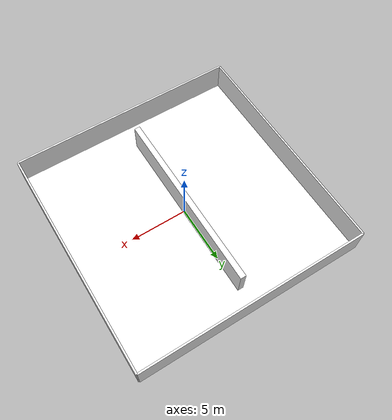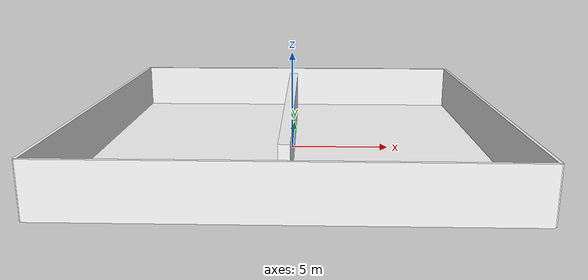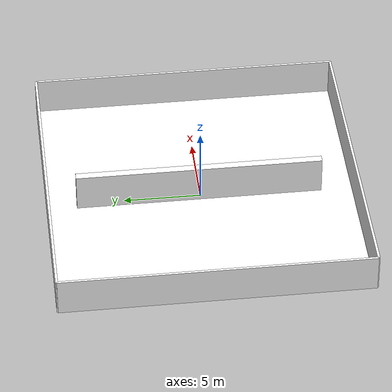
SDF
<?xml version='1.0'?>
<sdf version='1.6'>
  <model name='rwLab_20m'>
    <link name='Floor_1'>
      <pose frame=''>0 0 0 0 -0 0</pose>
      <inertial>
        <mass>1</mass>
        <pose frame=''>0 0 0 0 -0 0</pose>
        <inertia>
          <ixx>1</ixx>
          <ixy>0</ixy>
          <ixz>0</ixz>
          <iyy>1</iyy>
          <iyz>0</iyz>
          <izz>1</izz>
        </inertia>
      </inertial>
      <self_collide>0</self_collide>
      <kinematic>0</kinematic>
      <visual name='Floor_1_Visual'>
        <pose frame=''>0 0 0.001 0 -0 0</pose>
        <geometry>
          <box>
            <size>20 20 0.006</size>
          </box>
        </geometry>
        <material>
          <script>
            <uri>model://rwLab_20m/materials/scripts</uri>
            <uri>model://rwLab_20m/materials/textures</uri>
            <name>rw/tiles</name>
          </script>
          <ambient>1 1 1 1</ambient>
          <diffuse>1 1 1 1</diffuse>
          <specular>0 0 0 1</specular>
          <emissive>0 0 0 1</emissive>
        </material>
        <meta>
          <layer>0</layer>
        </meta>
        <cast_shadows>1</cast_shadows>
        <transparency>0</transparency>
      </visual>
      <collision name='Floor_1_Collision'>
        <laser_retro>0</laser_retro>
        <max_contacts>10</max_contacts>
        <pose frame=''>0 0 0.001 0 -0 0</pose>
        <geometry>
          <box>
            <size>20 20 0.006</size>
          </box>
        </geometry>
        <surface>
          <friction>
            <ode>
              <mu>1</mu>
              <mu2>1</mu2>
              <fdir1>0 0 0</fdir1>
              <slip1>0</slip1>
              <slip2>0</slip2>
            </ode>
            <torsional>
              <coefficient>1</coefficient>
              <patch_radius>0</patch_radius>
              <surface_radius>0</surface_radius>
              <use_patch_radius>1</use_patch_radius>
              <ode>
                <slip>0</slip>
              </ode>
            </torsional>
          </friction>
          <bounce>
            <restitution_coefficient>0</restitution_coefficient>
            <threshold>1e+06</threshold>
          </bounce>
          <contact>
            <collide_without_contact>0</collide_without_contact>
            <collide_without_contact_bitmask>1</collide_without_contact_bitmask>
            <collide_bitmask>1</collide_bitmask>
            <ode>
              <soft_cfm>0</soft_cfm>
              <soft_erp>0.2</soft_erp>
              <kp>1e+13</kp>
              <kd>1</kd>
              <max_vel>0.01</max_vel>
              <min_depth>0</min_depth>
            </ode>
            <bullet>
              <split_impulse>1</split_impulse>
              <split_impulse_penetration_threshold>-0.01</split_impulse_penetration_threshold>
              <soft_cfm>0</soft_cfm>
              <soft_erp>0.2</soft_erp>
              <kp>1e+13</kp>
              <kd>1</kd>
            </bullet>
          </contact>
        </surface>
      </collision>
    </link>
    <link name='Wall_12'>
      <pose frame=''>-10 0 0 0 -0 1.5708</pose>
      <inertial>
        <mass>1</mass>
        <pose frame=''>0 0 0 0 -0 0</pose>
        <inertia>
          <ixx>1</ixx>
          <ixy>0</ixy>
          <ixz>0</ixz>
          <iyy>1</iyy>
          <iyz>0</iyz>
          <izz>1</izz>
        </inertia>
      </inertial>
      <self_collide>0</self_collide>
      <kinematic>0</kinematic>
      <visual name='Wall_12_Visual'>
        <pose frame=''>0 0 1.25 0 -0 0</pose>
        <geometry>
          <box>
            <size>20 0.15 2.5</size>
          </box>
        </geometry>
        <material>
          <script>
            <uri>model://rwLab_20m/materials/scripts</uri>
            <uri>model://rwLab_20m/materials/textures</uri>
            <name>rw/ceramic</name>
          </script>
          <ambient>1 1 1 1</ambient>
          <diffuse>1 1 1 1</diffuse>
          <specular>0 0 0 1</specular>
          <emissive>0 0 0 1</emissive>
        </material>
        <meta>
          <layer>0</layer>
        </meta>
        <cast_shadows>1</cast_shadows>
        <transparency>0</transparency>
      </visual>
      <collision name='Wall_12_Collision'>
        <laser_retro>0</laser_retro>
        <max_contacts>10</max_contacts>
        <pose frame=''>0 0 1.25 0 -0 0</pose>
        <geometry>
          <box>
            <size>20 0.15 2.5</size>
          </box>
        </geometry>
        <surface>
          <friction>
            <ode>
              <mu>1</mu>
              <mu2>1</mu2>
              <fdir1>0 0 0</fdir1>
              <slip1>0</slip1>
              <slip2>0</slip2>
            </ode>
            <torsional>
              <coefficient>1</coefficient>
              <patch_radius>0</patch_radius>
              <surface_radius>0</surface_radius>
              <use_patch_radius>1</use_patch_radius>
              <ode>
                <slip>0</slip>
              </ode>
            </torsional>
          </friction>
          <bounce>
            <restitution_coefficient>0</restitution_coefficient>
            <threshold>1e+06</threshold>
          </bounce>
          <contact>
            <collide_without_contact>0</collide_without_contact>
            <collide_without_contact_bitmask>1</collide_without_contact_bitmask>
            <collide_bitmask>1</collide_bitmask>
            <ode>
              <soft_cfm>0</soft_cfm>
              <soft_erp>0.2</soft_erp>
              <kp>1e+13</kp>
              <kd>1</kd>
              <max_vel>0.01</max_vel>
              <min_depth>0</min_depth>
            </ode>
            <bullet>
              <split_impulse>1</split_impulse>
              <split_impulse_penetration_threshold>-0.01</split_impulse_penetration_threshold>
              <soft_cfm>0</soft_cfm>
              <soft_erp>0.2</soft_erp>
              <kp>1e+13</kp>
              <kd>1</kd>
            </bullet>
          </contact>
        </surface>
      </collision>
    </link>
    <link name='Wall_13'>
      <pose frame=''>0 10 0 0 -0 0</pose>
      <inertial>
        <mass>1</mass>
        <pose frame=''>0 0 0 0 -0 0</pose>
        <inertia>
          <ixx>1</ixx>
          <ixy>0</ixy>
          <ixz>0</ixz>
          <iyy>1</iyy>
          <iyz>0</iyz>
          <izz>1</izz>
        </inertia>
      </inertial>
      <self_collide>0</self_collide>
      <kinematic>0</kinematic>
      <gravity>1</gravity>
      <visual name='Wall_13_Visual'>
        <pose frame=''>0 0 1.25 0 -0 0</pose>
        <geometry>
          <box>
            <size>20 0.15 2.5</size>
          </box>
        </geometry>
        <material>
          <script>
            <uri>model://rwLab_20m/materials/scripts</uri>
            <uri>model://rwLab_20m/materials/textures</uri>
            <name>rw/brick</name>
          </script>
          <ambient>1 1 1 1</ambient>
          <diffuse>1 1 1 1</diffuse>
          <specular>0 0 0 1</specular>
          <emissive>0 0 0 1</emissive>
          <shader type='vertex'>
            <normal_map>__default__</normal_map>
          </shader>
        </material>
        <meta>
          <layer>0</layer>
        </meta>
        <cast_shadows>1</cast_shadows>
        <transparency>0</transparency>
      </visual>
      <collision name='Wall_13_Collision'>
        <laser_retro>0</laser_retro>
        <max_contacts>10</max_contacts>
        <pose frame=''>0 0 1.25 0 -0 0</pose>
        <geometry>
          <box>
            <size>20 0.15 2.5</size>
          </box>
        </geometry>
        <surface>
          <friction>
            <ode>
              <mu>1</mu>
              <mu2>1</mu2>
              <fdir1>0 0 0</fdir1>
              <slip1>0</slip1>
              <slip2>0</slip2>
            </ode>
            <torsional>
              <coefficient>1</coefficient>
              <patch_radius>0</patch_radius>
              <surface_radius>0</surface_radius>
              <use_patch_radius>1</use_patch_radius>
              <ode>
                <slip>0</slip>
              </ode>
            </torsional>
          </friction>
          <bounce>
            <restitution_coefficient>0</restitution_coefficient>
            <threshold>1e+06</threshold>
          </bounce>
          <contact>
            <collide_without_contact>0</collide_without_contact>
            <collide_without_contact_bitmask>1</collide_without_contact_bitmask>
            <collide_bitmask>1</collide_bitmask>
            <ode>
              <soft_cfm>0</soft_cfm>
              <soft_erp>0.2</soft_erp>
              <kp>1e+13</kp>
              <kd>1</kd>
              <max_vel>0.01</max_vel>
              <min_depth>0</min_depth>
            </ode>
            <bullet>
              <split_impulse>1</split_impulse>
              <split_impulse_penetration_threshold>-0.01</split_impulse_penetration_threshold>
              <soft_cfm>0</soft_cfm>
              <soft_erp>0.2</soft_erp>
              <kp>1e+13</kp>
              <kd>1</kd>
            </bullet>
          </contact>
        </surface>
      </collision>
    </link>
    <link name='Wall_14'>
      <pose frame=''>10 0 0 0 0 -1.5708</pose>
      <inertial>
        <mass>1</mass>
        <pose frame=''>0 0 0 0 -0 0</pose>
        <inertia>
          <ixx>1</ixx>
          <ixy>0</ixy>
          <ixz>0</ixz>
          <iyy>1</iyy>
          <iyz>0</iyz>
          <izz>1</izz>
        </inertia>
      </inertial>
      <self_collide>0</self_collide>
      <kinematic>0</kinematic>
      <visual name='Wall_14_Visual'>
        <pose frame=''>0 0 1.25 0 -0 0</pose>
        <geometry>
          <box>
            <size>20 0.15 2.5</size>
          </box>
        </geometry>
        <material>
          <script>
            <uri>model://rwLab_20m/materials/scripts</uri>
            <uri>model://rwLab_20m/materials/textures</uri>
            <name>rw/hex</name>
          </script>
          <ambient>1 1 1 1</ambient>
          <diffuse>1 1 1 1</diffuse>
          <specular>0 0 0 1</specular>
          <emissive>0 0 0 1</emissive>
        </material>
        <meta>
          <layer>0</layer>
        </meta>
        <cast_shadows>1</cast_shadows>
        <transparency>0</transparency>
      </visual>
      <collision name='Wall_14_Collision'>
        <laser_retro>0</laser_retro>
        <max_contacts>10</max_contacts>
        <pose frame=''>0 0 1.25 0 -0 0</pose>
        <geometry>
          <box>
            <size>20 0.15 2.5</size>
          </box>
        </geometry>
        <surface>
          <friction>
            <ode>
              <mu>1</mu>
              <mu2>1</mu2>
              <fdir1>0 0 0</fdir1>
              <slip1>0</slip1>
              <slip2>0</slip2>
            </ode>
            <torsional>
              <coefficient>1</coefficient>
              <patch_radius>0</patch_radius>
              <surface_radius>0</surface_radius>
              <use_patch_radius>1</use_patch_radius>
              <ode>
                <slip>0</slip>
              </ode>
            </torsional>
          </friction>
          <bounce>
            <restitution_coefficient>0</restitution_coefficient>
            <threshold>1e+06</threshold>
          </bounce>
          <contact>
            <collide_without_contact>0</collide_without_contact>
            <collide_without_contact_bitmask>1</collide_without_contact_bitmask>
            <collide_bitmask>1</collide_bitmask>
            <ode>
              <soft_cfm>0</soft_cfm>
              <soft_erp>0.2</soft_erp>
              <kp>1e+13</kp>
              <kd>1</kd>
              <max_vel>0.01</max_vel>
              <min_depth>0</min_depth>
            </ode>
            <bullet>
              <split_impulse>1</split_impulse>
              <split_impulse_penetration_threshold>-0.01</split_impulse_penetration_threshold>
              <soft_cfm>0</soft_cfm>
              <soft_erp>0.2</soft_erp>
              <kp>1e+13</kp>
              <kd>1</kd>
            </bullet>
          </contact>
        </surface>
      </collision>
    </link>
    <link name='Wall_14_clone'>
      <pose frame=''>-0.119362 0.086122 -0 0 0 -1.5708</pose>
      <inertial>
        <mass>1</mass>
        <pose frame=''>0 0 0 0 -0 0</pose>
        <inertia>
          <ixx>1</ixx>
          <ixy>0</ixy>
          <ixz>0</ixz>
          <iyy>1</iyy>
          <iyz>0</iyz>
          <izz>1</izz>
        </inertia>
      </inertial>
      <self_collide>0</self_collide>
      <kinematic>0</kinematic>
      <gravity>1</gravity>
      <visual name='Wall_14_Visual'>
        <pose frame=''>0 0 1.25 0 -0 0</pose>
        <geometry>
          <box>
            <size>16 0.5 2.5</size>
          </box>
        </geometry>
        <material>
          <script>
            <uri>model://rwLab_20m/materials/scripts</uri>
            <uri>model://rwLab_20m/materials/textures</uri>
            <name>rw/hex</name>
          </script>
          <ambient>1 1 1 1</ambient>
          <diffuse>1 1 1 1</diffuse>
          <specular>0 0 0 1</specular>
          <emissive>0 0 0 1</emissive>
          <shader type='vertex'>
            <normal_map>__default__</normal_map>
          </shader>
        </material>
        <meta>
          <layer>0</layer>
        </meta>
        <cast_shadows>1</cast_shadows>
        <transparency>0</transparency>
      </visual>
      <collision name='Wall_14_Collision'>
        <laser_retro>0</laser_retro>
        <max_contacts>10</max_contacts>
        <pose frame=''>0 0 1.25 0 -0 0</pose>
        <geometry>
          <box>
            <size>16 0.5 2.5</size>
          </box>
        </geometry>
        <surface>
          <friction>
            <ode>
              <mu>1</mu>
              <mu2>1</mu2>
              <fdir1>0 0 0</fdir1>
              <slip1>0</slip1>
              <slip2>0</slip2>
            </ode>
            <torsional>
              <coefficient>1</coefficient>
              <patch_radius>0</patch_radius>
              <surface_radius>0</surface_radius>
              <use_patch_radius>1</use_patch_radius>
              <ode>
                <slip>0</slip>
              </ode>
            </torsional>
          </friction>
          <bounce>
            <restitution_coefficient>0</restitution_coefficient>
            <threshold>1e+06</threshold>
          </bounce>
          <contact>
            <collide_without_contact>0</collide_without_contact>
            <collide_without_contact_bitmask>1</collide_without_contact_bitmask>
            <collide_bitmask>1</collide_bitmask>
            <ode>
              <soft_cfm>0</soft_cfm>
              <soft_erp>0.2</soft_erp>
              <kp>1e+13</kp>
              <kd>1</kd>
              <max_vel>0.01</max_vel>
              <min_depth>0</min_depth>
            </ode>
            <bullet>
              <split_impulse>1</split_impulse>
              <split_impulse_penetration_threshold>-0.01</split_impulse_penetration_threshold>
              <soft_cfm>0</soft_cfm>
              <soft_erp>0.2</soft_erp>
              <kp>1e+13</kp>
              <kd>1</kd>
            </bullet>
          </contact>
        </surface>
      </collision>
    </link>
    <link name='Wall_15'>
      <pose frame=''>0 -10 0 0 -0 3.14159</pose>
      <inertial>
        <mass>1</mass>
        <pose frame=''>0 0 0 0 -0 0</pose>
        <inertia>
          <ixx>1</ixx>
          <ixy>0</ixy>
          <ixz>0</ixz>
          <iyy>1</iyy>
          <iyz>0</iyz>
          <izz>1</izz>
        </inertia>
      </inertial>
      <self_collide>0</self_collide>
      <kinematic>0</kinematic>
      <visual name='Wall_15_Visual'>
        <pose frame=''>0 0 1.25 0 -0 0</pose>
        <geometry>
          <box>
            <size>20 0.15 2.5</size>
          </box>
        </geometry>
        <material>
          <script>
            <uri>model://rwLab_20m/materials/scripts</uri>
            <uri>model://rwLab_20m/materials/textures</uri>
            <name>rw/stone</name>
          </script>
          <ambient>1 1 1 1</ambient>
          <diffuse>1 1 1 1</diffuse>
          <specular>0 0 0 1</specular>
          <emissive>0 0 0 1</emissive>
        </material>
        <meta>
          <layer>0</layer>
        </meta>
        <cast_shadows>1</cast_shadows>
        <transparency>0</transparency>
      </visual>
      <collision name='Wall_15_Collision'>
        <laser_retro>0</laser_retro>
        <max_contacts>10</max_contacts>
        <pose frame=''>0 0 1.25 0 -0 0</pose>
        <geometry>
          <box>
            <size>20 0.15 2.5</size>
          </box>
        </geometry>
        <surface>
          <friction>
            <ode>
              <mu>1</mu>
              <mu2>1</mu2>
              <fdir1>0 0 0</fdir1>
              <slip1>0</slip1>
              <slip2>0</slip2>
            </ode>
            <torsional>
              <coefficient>1</coefficient>
              <patch_radius>0</patch_radius>
              <surface_radius>0</surface_radius>
              <use_patch_radius>1</use_patch_radius>
              <ode>
                <slip>0</slip>
              </ode>
            </torsional>
          </friction>
          <bounce>
            <restitution_coefficient>0</restitution_coefficient>
            <threshold>1e+06</threshold>
          </bounce>
          <contact>
            <collide_without_contact>0</collide_without_contact>
            <collide_without_contact_bitmask>1</collide_without_contact_bitmask>
            <collide_bitmask>1</collide_bitmask>
            <ode>
              <soft_cfm>0</soft_cfm>
              <soft_erp>0.2</soft_erp>
              <kp>1e+13</kp>
              <kd>1</kd>
              <max_vel>0.01</max_vel>
              <min_depth>0</min_depth>
            </ode>
            <bullet>
              <split_impulse>1</split_impulse>
              <split_impulse_penetration_threshold>-0.01</split_impulse_penetration_threshold>
              <soft_cfm>0</soft_cfm>
              <soft_erp>0.2</soft_erp>
              <kp>1e+13</kp>
              <kd>1</kd>
            </bullet>
          </contact>
        </surface>
      </collision>
    </link>
    <static>1</static>
    <allow_auto_disable>1</allow_auto_disable>
  </model>
</sdf>
